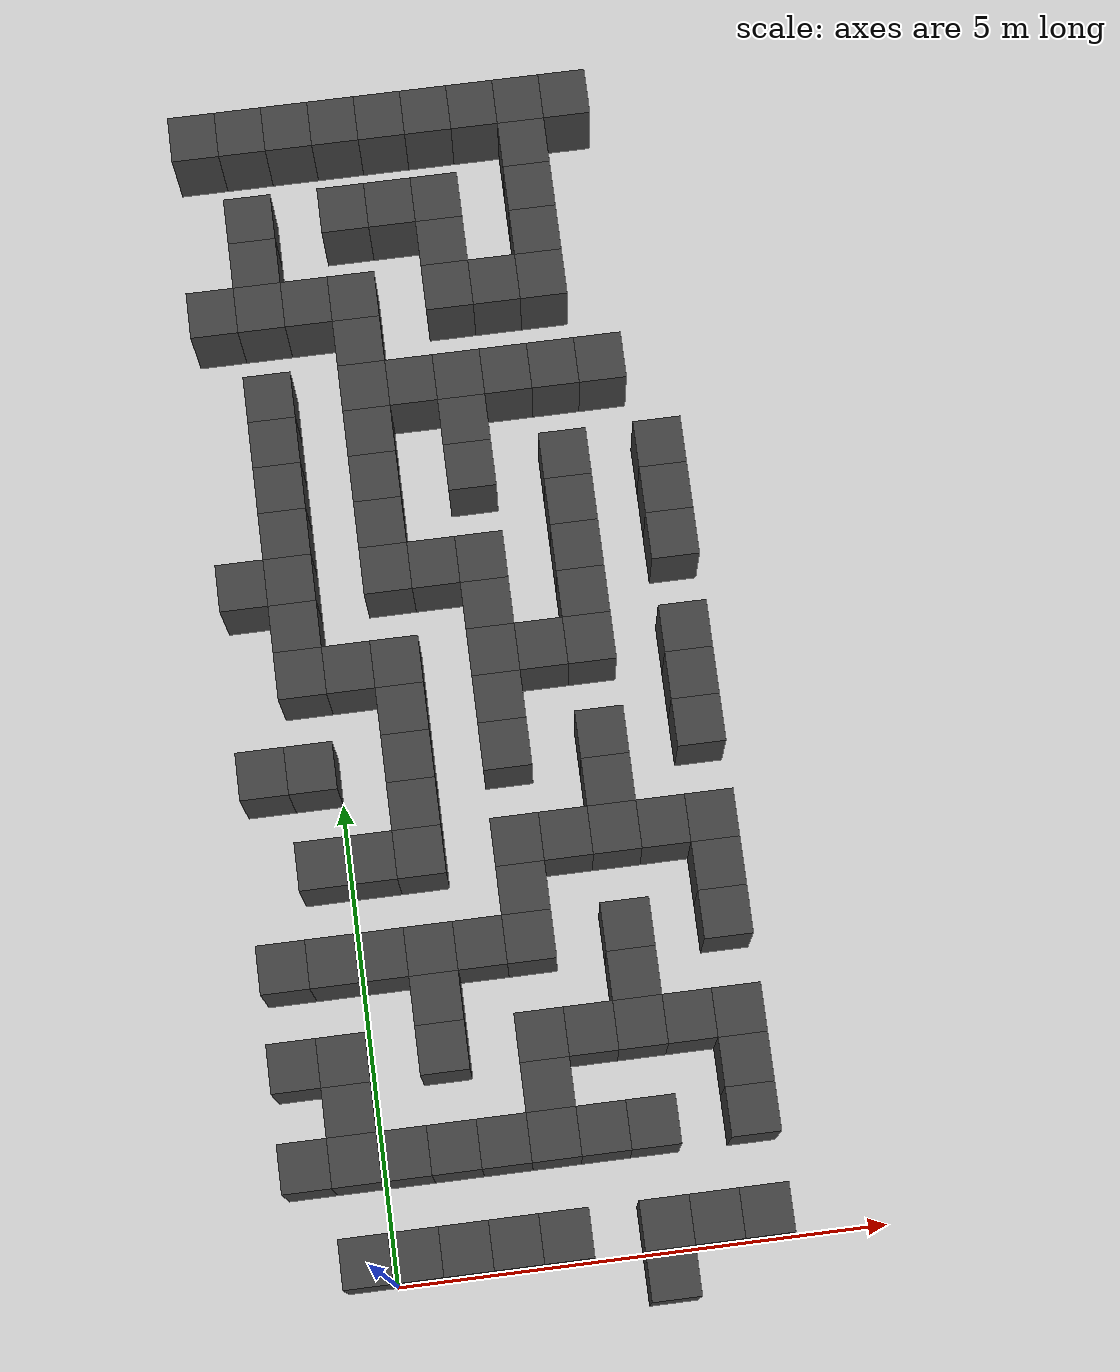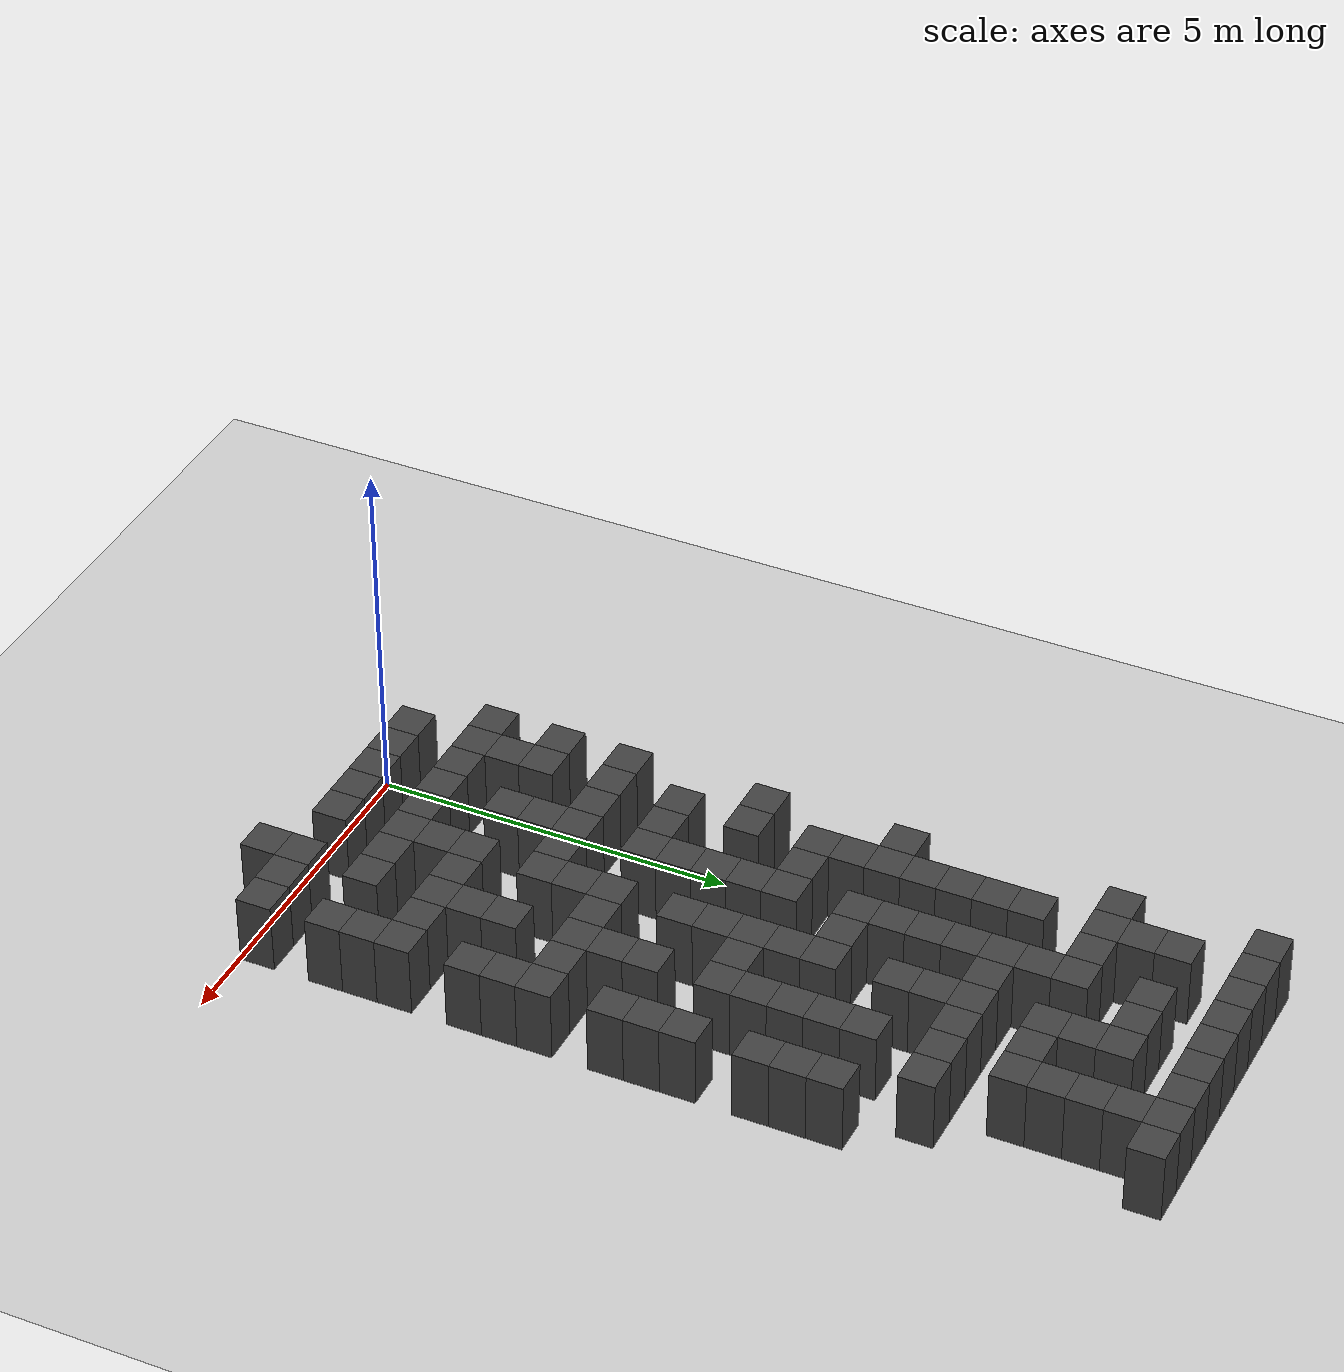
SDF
<sdf version="1.7">
 <world name="map_19815">
  <model name="ground_plane">
   <static>true</static>
   <link name="link">
    <collision name="collision">
     <geometry><plane><normal>0 0 1</normal><size>200 200</size></plane></geometry>
    </collision>
    <visual name="visual">
     <geometry><plane><normal>0 0 1</normal><size>200 200</size></plane></geometry>
     <material><ambient>0.8 0.8 0.8 1</ambient><diffuse>0.8 0.8 0.8 1</diffuse></material>
    </visual>
   </link>
  </model>
  <model name="maze_environment">
   <static>true</static>
   <link name="wall_23">
    <pose>-0.750 12.250 0.500 0 0 0</pose>
    <collision name="col"><geometry><box><size>0.5 0.5 1.0</size></box></geometry></collision>
    <visual name="vis">
     <geometry><box><size>0.5 0.5 1.0</size></box></geometry>
     <material><ambient>0.15 0.15 0.15 1</ambient><diffuse>0.25 0.25 0.25 1</diffuse></material>
    </visual>
   </link>
   <link name="wall_24">
    <pose>-0.250 12.250 0.500 0 0 0</pose>
    <collision name="col"><geometry><box><size>0.5 0.5 1.0</size></box></geometry></collision>
    <visual name="vis">
     <geometry><box><size>0.5 0.5 1.0</size></box></geometry>
     <material><ambient>0.15 0.15 0.15 1</ambient><diffuse>0.25 0.25 0.25 1</diffuse></material>
    </visual>
   </link>
   <link name="wall_25">
    <pose>0.250 12.250 0.500 0 0 0</pose>
    <collision name="col"><geometry><box><size>0.5 0.5 1.0</size></box></geometry></collision>
    <visual name="vis">
     <geometry><box><size>0.5 0.5 1.0</size></box></geometry>
     <material><ambient>0.15 0.15 0.15 1</ambient><diffuse>0.25 0.25 0.25 1</diffuse></material>
    </visual>
   </link>
   <link name="wall_26">
    <pose>0.750 12.250 0.500 0 0 0</pose>
    <collision name="col"><geometry><box><size>0.5 0.5 1.0</size></box></geometry></collision>
    <visual name="vis">
     <geometry><box><size>0.5 0.5 1.0</size></box></geometry>
     <material><ambient>0.15 0.15 0.15 1</ambient><diffuse>0.25 0.25 0.25 1</diffuse></material>
    </visual>
   </link>
   <link name="wall_27">
    <pose>1.250 12.250 0.500 0 0 0</pose>
    <collision name="col"><geometry><box><size>0.5 0.5 1.0</size></box></geometry></collision>
    <visual name="vis">
     <geometry><box><size>0.5 0.5 1.0</size></box></geometry>
     <material><ambient>0.15 0.15 0.15 1</ambient><diffuse>0.25 0.25 0.25 1</diffuse></material>
    </visual>
   </link>
   <link name="wall_28">
    <pose>1.750 12.250 0.500 0 0 0</pose>
    <collision name="col"><geometry><box><size>0.5 0.5 1.0</size></box></geometry></collision>
    <visual name="vis">
     <geometry><box><size>0.5 0.5 1.0</size></box></geometry>
     <material><ambient>0.15 0.15 0.15 1</ambient><diffuse>0.25 0.25 0.25 1</diffuse></material>
    </visual>
   </link>
   <link name="wall_29">
    <pose>2.250 12.250 0.500 0 0 0</pose>
    <collision name="col"><geometry><box><size>0.5 0.5 1.0</size></box></geometry></collision>
    <visual name="vis">
     <geometry><box><size>0.5 0.5 1.0</size></box></geometry>
     <material><ambient>0.15 0.15 0.15 1</ambient><diffuse>0.25 0.25 0.25 1</diffuse></material>
    </visual>
   </link>
   <link name="wall_30">
    <pose>2.750 12.250 0.500 0 0 0</pose>
    <collision name="col"><geometry><box><size>0.5 0.5 1.0</size></box></geometry></collision>
    <visual name="vis">
     <geometry><box><size>0.5 0.5 1.0</size></box></geometry>
     <material><ambient>0.15 0.15 0.15 1</ambient><diffuse>0.25 0.25 0.25 1</diffuse></material>
    </visual>
   </link>
   <link name="wall_31">
    <pose>3.250 12.250 0.500 0 0 0</pose>
    <collision name="col"><geometry><box><size>0.5 0.5 1.0</size></box></geometry></collision>
    <visual name="vis">
     <geometry><box><size>0.5 0.5 1.0</size></box></geometry>
     <material><ambient>0.15 0.15 0.15 1</ambient><diffuse>0.25 0.25 0.25 1</diffuse></material>
    </visual>
   </link>
   <link name="wall_56">
    <pose>2.750 11.750 0.500 0 0 0</pose>
    <collision name="col"><geometry><box><size>0.5 0.5 1.0</size></box></geometry></collision>
    <visual name="vis">
     <geometry><box><size>0.5 0.5 1.0</size></box></geometry>
     <material><ambient>0.15 0.15 0.15 1</ambient><diffuse>0.25 0.25 0.25 1</diffuse></material>
    </visual>
   </link>
   <link name="wall_74">
    <pose>-0.250 11.250 0.500 0 0 0</pose>
    <collision name="col"><geometry><box><size>0.5 0.5 1.0</size></box></geometry></collision>
    <visual name="vis">
     <geometry><box><size>0.5 0.5 1.0</size></box></geometry>
     <material><ambient>0.15 0.15 0.15 1</ambient><diffuse>0.25 0.25 0.25 1</diffuse></material>
    </visual>
   </link>
   <link name="wall_75">
    <pose>0.750 11.250 0.500 0 0 0</pose>
    <collision name="col"><geometry><box><size>0.5 0.5 1.0</size></box></geometry></collision>
    <visual name="vis">
     <geometry><box><size>0.5 0.5 1.0</size></box></geometry>
     <material><ambient>0.15 0.15 0.15 1</ambient><diffuse>0.25 0.25 0.25 1</diffuse></material>
    </visual>
   </link>
   <link name="wall_76">
    <pose>1.250 11.250 0.500 0 0 0</pose>
    <collision name="col"><geometry><box><size>0.5 0.5 1.0</size></box></geometry></collision>
    <visual name="vis">
     <geometry><box><size>0.5 0.5 1.0</size></box></geometry>
     <material><ambient>0.15 0.15 0.15 1</ambient><diffuse>0.25 0.25 0.25 1</diffuse></material>
    </visual>
   </link>
   <link name="wall_77">
    <pose>1.750 11.250 0.500 0 0 0</pose>
    <collision name="col"><geometry><box><size>0.5 0.5 1.0</size></box></geometry></collision>
    <visual name="vis">
     <geometry><box><size>0.5 0.5 1.0</size></box></geometry>
     <material><ambient>0.15 0.15 0.15 1</ambient><diffuse>0.25 0.25 0.25 1</diffuse></material>
    </visual>
   </link>
   <link name="wall_78">
    <pose>2.750 11.250 0.500 0 0 0</pose>
    <collision name="col"><geometry><box><size>0.5 0.5 1.0</size></box></geometry></collision>
    <visual name="vis">
     <geometry><box><size>0.5 0.5 1.0</size></box></geometry>
     <material><ambient>0.15 0.15 0.15 1</ambient><diffuse>0.25 0.25 0.25 1</diffuse></material>
    </visual>
   </link>
   <link name="wall_102">
    <pose>-0.250 10.750 0.500 0 0 0</pose>
    <collision name="col"><geometry><box><size>0.5 0.5 1.0</size></box></geometry></collision>
    <visual name="vis">
     <geometry><box><size>0.5 0.5 1.0</size></box></geometry>
     <material><ambient>0.15 0.15 0.15 1</ambient><diffuse>0.25 0.25 0.25 1</diffuse></material>
    </visual>
   </link>
   <link name="wall_103">
    <pose>1.750 10.750 0.500 0 0 0</pose>
    <collision name="col"><geometry><box><size>0.5 0.5 1.0</size></box></geometry></collision>
    <visual name="vis">
     <geometry><box><size>0.5 0.5 1.0</size></box></geometry>
     <material><ambient>0.15 0.15 0.15 1</ambient><diffuse>0.25 0.25 0.25 1</diffuse></material>
    </visual>
   </link>
   <link name="wall_104">
    <pose>2.750 10.750 0.500 0 0 0</pose>
    <collision name="col"><geometry><box><size>0.5 0.5 1.0</size></box></geometry></collision>
    <visual name="vis">
     <geometry><box><size>0.5 0.5 1.0</size></box></geometry>
     <material><ambient>0.15 0.15 0.15 1</ambient><diffuse>0.25 0.25 0.25 1</diffuse></material>
    </visual>
   </link>
   <link name="wall_126">
    <pose>-0.750 10.250 0.500 0 0 0</pose>
    <collision name="col"><geometry><box><size>0.5 0.5 1.0</size></box></geometry></collision>
    <visual name="vis">
     <geometry><box><size>0.5 0.5 1.0</size></box></geometry>
     <material><ambient>0.15 0.15 0.15 1</ambient><diffuse>0.25 0.25 0.25 1</diffuse></material>
    </visual>
   </link>
   <link name="wall_127">
    <pose>-0.250 10.250 0.500 0 0 0</pose>
    <collision name="col"><geometry><box><size>0.5 0.5 1.0</size></box></geometry></collision>
    <visual name="vis">
     <geometry><box><size>0.5 0.5 1.0</size></box></geometry>
     <material><ambient>0.15 0.15 0.15 1</ambient><diffuse>0.25 0.25 0.25 1</diffuse></material>
    </visual>
   </link>
   <link name="wall_128">
    <pose>0.250 10.250 0.500 0 0 0</pose>
    <collision name="col"><geometry><box><size>0.5 0.5 1.0</size></box></geometry></collision>
    <visual name="vis">
     <geometry><box><size>0.5 0.5 1.0</size></box></geometry>
     <material><ambient>0.15 0.15 0.15 1</ambient><diffuse>0.25 0.25 0.25 1</diffuse></material>
    </visual>
   </link>
   <link name="wall_129">
    <pose>0.750 10.250 0.500 0 0 0</pose>
    <collision name="col"><geometry><box><size>0.5 0.5 1.0</size></box></geometry></collision>
    <visual name="vis">
     <geometry><box><size>0.5 0.5 1.0</size></box></geometry>
     <material><ambient>0.15 0.15 0.15 1</ambient><diffuse>0.25 0.25 0.25 1</diffuse></material>
    </visual>
   </link>
   <link name="wall_130">
    <pose>1.750 10.250 0.500 0 0 0</pose>
    <collision name="col"><geometry><box><size>0.5 0.5 1.0</size></box></geometry></collision>
    <visual name="vis">
     <geometry><box><size>0.5 0.5 1.0</size></box></geometry>
     <material><ambient>0.15 0.15 0.15 1</ambient><diffuse>0.25 0.25 0.25 1</diffuse></material>
    </visual>
   </link>
   <link name="wall_131">
    <pose>2.250 10.250 0.500 0 0 0</pose>
    <collision name="col"><geometry><box><size>0.5 0.5 1.0</size></box></geometry></collision>
    <visual name="vis">
     <geometry><box><size>0.5 0.5 1.0</size></box></geometry>
     <material><ambient>0.15 0.15 0.15 1</ambient><diffuse>0.25 0.25 0.25 1</diffuse></material>
    </visual>
   </link>
   <link name="wall_132">
    <pose>2.750 10.250 0.500 0 0 0</pose>
    <collision name="col"><geometry><box><size>0.5 0.5 1.0</size></box></geometry></collision>
    <visual name="vis">
     <geometry><box><size>0.5 0.5 1.0</size></box></geometry>
     <material><ambient>0.15 0.15 0.15 1</ambient><diffuse>0.25 0.25 0.25 1</diffuse></material>
    </visual>
   </link>
   <link name="wall_153">
    <pose>0.750 9.750 0.500 0 0 0</pose>
    <collision name="col"><geometry><box><size>0.5 0.5 1.0</size></box></geometry></collision>
    <visual name="vis">
     <geometry><box><size>0.5 0.5 1.0</size></box></geometry>
     <material><ambient>0.15 0.15 0.15 1</ambient><diffuse>0.25 0.25 0.25 1</diffuse></material>
    </visual>
   </link>
   <link name="wall_180">
    <pose>-0.250 9.250 0.500 0 0 0</pose>
    <collision name="col"><geometry><box><size>0.5 0.5 1.0</size></box></geometry></collision>
    <visual name="vis">
     <geometry><box><size>0.5 0.5 1.0</size></box></geometry>
     <material><ambient>0.15 0.15 0.15 1</ambient><diffuse>0.25 0.25 0.25 1</diffuse></material>
    </visual>
   </link>
   <link name="wall_181">
    <pose>0.750 9.250 0.500 0 0 0</pose>
    <collision name="col"><geometry><box><size>0.5 0.5 1.0</size></box></geometry></collision>
    <visual name="vis">
     <geometry><box><size>0.5 0.5 1.0</size></box></geometry>
     <material><ambient>0.15 0.15 0.15 1</ambient><diffuse>0.25 0.25 0.25 1</diffuse></material>
    </visual>
   </link>
   <link name="wall_182">
    <pose>1.250 9.250 0.500 0 0 0</pose>
    <collision name="col"><geometry><box><size>0.5 0.5 1.0</size></box></geometry></collision>
    <visual name="vis">
     <geometry><box><size>0.5 0.5 1.0</size></box></geometry>
     <material><ambient>0.15 0.15 0.15 1</ambient><diffuse>0.25 0.25 0.25 1</diffuse></material>
    </visual>
   </link>
   <link name="wall_183">
    <pose>1.750 9.250 0.500 0 0 0</pose>
    <collision name="col"><geometry><box><size>0.5 0.5 1.0</size></box></geometry></collision>
    <visual name="vis">
     <geometry><box><size>0.5 0.5 1.0</size></box></geometry>
     <material><ambient>0.15 0.15 0.15 1</ambient><diffuse>0.25 0.25 0.25 1</diffuse></material>
    </visual>
   </link>
   <link name="wall_184">
    <pose>2.250 9.250 0.500 0 0 0</pose>
    <collision name="col"><geometry><box><size>0.5 0.5 1.0</size></box></geometry></collision>
    <visual name="vis">
     <geometry><box><size>0.5 0.5 1.0</size></box></geometry>
     <material><ambient>0.15 0.15 0.15 1</ambient><diffuse>0.25 0.25 0.25 1</diffuse></material>
    </visual>
   </link>
   <link name="wall_185">
    <pose>2.750 9.250 0.500 0 0 0</pose>
    <collision name="col"><geometry><box><size>0.5 0.5 1.0</size></box></geometry></collision>
    <visual name="vis">
     <geometry><box><size>0.5 0.5 1.0</size></box></geometry>
     <material><ambient>0.15 0.15 0.15 1</ambient><diffuse>0.25 0.25 0.25 1</diffuse></material>
    </visual>
   </link>
   <link name="wall_186">
    <pose>3.250 9.250 0.500 0 0 0</pose>
    <collision name="col"><geometry><box><size>0.5 0.5 1.0</size></box></geometry></collision>
    <visual name="vis">
     <geometry><box><size>0.5 0.5 1.0</size></box></geometry>
     <material><ambient>0.15 0.15 0.15 1</ambient><diffuse>0.25 0.25 0.25 1</diffuse></material>
    </visual>
   </link>
   <link name="wall_207">
    <pose>-0.250 8.750 0.500 0 0 0</pose>
    <collision name="col"><geometry><box><size>0.5 0.5 1.0</size></box></geometry></collision>
    <visual name="vis">
     <geometry><box><size>0.5 0.5 1.0</size></box></geometry>
     <material><ambient>0.15 0.15 0.15 1</ambient><diffuse>0.25 0.25 0.25 1</diffuse></material>
    </visual>
   </link>
   <link name="wall_208">
    <pose>0.750 8.750 0.500 0 0 0</pose>
    <collision name="col"><geometry><box><size>0.5 0.5 1.0</size></box></geometry></collision>
    <visual name="vis">
     <geometry><box><size>0.5 0.5 1.0</size></box></geometry>
     <material><ambient>0.15 0.15 0.15 1</ambient><diffuse>0.25 0.25 0.25 1</diffuse></material>
    </visual>
   </link>
   <link name="wall_209">
    <pose>1.750 8.750 0.500 0 0 0</pose>
    <collision name="col"><geometry><box><size>0.5 0.5 1.0</size></box></geometry></collision>
    <visual name="vis">
     <geometry><box><size>0.5 0.5 1.0</size></box></geometry>
     <material><ambient>0.15 0.15 0.15 1</ambient><diffuse>0.25 0.25 0.25 1</diffuse></material>
    </visual>
   </link>
   <link name="wall_233">
    <pose>-0.250 8.250 0.500 0 0 0</pose>
    <collision name="col"><geometry><box><size>0.5 0.5 1.0</size></box></geometry></collision>
    <visual name="vis">
     <geometry><box><size>0.5 0.5 1.0</size></box></geometry>
     <material><ambient>0.15 0.15 0.15 1</ambient><diffuse>0.25 0.25 0.25 1</diffuse></material>
    </visual>
   </link>
   <link name="wall_234">
    <pose>0.750 8.250 0.500 0 0 0</pose>
    <collision name="col"><geometry><box><size>0.5 0.5 1.0</size></box></geometry></collision>
    <visual name="vis">
     <geometry><box><size>0.5 0.5 1.0</size></box></geometry>
     <material><ambient>0.15 0.15 0.15 1</ambient><diffuse>0.25 0.25 0.25 1</diffuse></material>
    </visual>
   </link>
   <link name="wall_235">
    <pose>1.750 8.250 0.500 0 0 0</pose>
    <collision name="col"><geometry><box><size>0.5 0.5 1.0</size></box></geometry></collision>
    <visual name="vis">
     <geometry><box><size>0.5 0.5 1.0</size></box></geometry>
     <material><ambient>0.15 0.15 0.15 1</ambient><diffuse>0.25 0.25 0.25 1</diffuse></material>
    </visual>
   </link>
   <link name="wall_236">
    <pose>2.750 8.250 0.500 0 0 0</pose>
    <collision name="col"><geometry><box><size>0.5 0.5 1.0</size></box></geometry></collision>
    <visual name="vis">
     <geometry><box><size>0.5 0.5 1.0</size></box></geometry>
     <material><ambient>0.15 0.15 0.15 1</ambient><diffuse>0.25 0.25 0.25 1</diffuse></material>
    </visual>
   </link>
   <link name="wall_237">
    <pose>3.750 8.250 0.500 0 0 0</pose>
    <collision name="col"><geometry><box><size>0.5 0.5 1.0</size></box></geometry></collision>
    <visual name="vis">
     <geometry><box><size>0.5 0.5 1.0</size></box></geometry>
     <material><ambient>0.15 0.15 0.15 1</ambient><diffuse>0.25 0.25 0.25 1</diffuse></material>
    </visual>
   </link>
   <link name="wall_259">
    <pose>-0.250 7.750 0.500 0 0 0</pose>
    <collision name="col"><geometry><box><size>0.5 0.5 1.0</size></box></geometry></collision>
    <visual name="vis">
     <geometry><box><size>0.5 0.5 1.0</size></box></geometry>
     <material><ambient>0.15 0.15 0.15 1</ambient><diffuse>0.25 0.25 0.25 1</diffuse></material>
    </visual>
   </link>
   <link name="wall_260">
    <pose>0.750 7.750 0.500 0 0 0</pose>
    <collision name="col"><geometry><box><size>0.5 0.5 1.0</size></box></geometry></collision>
    <visual name="vis">
     <geometry><box><size>0.5 0.5 1.0</size></box></geometry>
     <material><ambient>0.15 0.15 0.15 1</ambient><diffuse>0.25 0.25 0.25 1</diffuse></material>
    </visual>
   </link>
   <link name="wall_261">
    <pose>2.750 7.750 0.500 0 0 0</pose>
    <collision name="col"><geometry><box><size>0.5 0.5 1.0</size></box></geometry></collision>
    <visual name="vis">
     <geometry><box><size>0.5 0.5 1.0</size></box></geometry>
     <material><ambient>0.15 0.15 0.15 1</ambient><diffuse>0.25 0.25 0.25 1</diffuse></material>
    </visual>
   </link>
   <link name="wall_262">
    <pose>3.750 7.750 0.500 0 0 0</pose>
    <collision name="col"><geometry><box><size>0.5 0.5 1.0</size></box></geometry></collision>
    <visual name="vis">
     <geometry><box><size>0.5 0.5 1.0</size></box></geometry>
     <material><ambient>0.15 0.15 0.15 1</ambient><diffuse>0.25 0.25 0.25 1</diffuse></material>
    </visual>
   </link>
   <link name="wall_281">
    <pose>-0.750 7.250 0.500 0 0 0</pose>
    <collision name="col"><geometry><box><size>0.5 0.5 1.0</size></box></geometry></collision>
    <visual name="vis">
     <geometry><box><size>0.5 0.5 1.0</size></box></geometry>
     <material><ambient>0.15 0.15 0.15 1</ambient><diffuse>0.25 0.25 0.25 1</diffuse></material>
    </visual>
   </link>
   <link name="wall_282">
    <pose>-0.250 7.250 0.500 0 0 0</pose>
    <collision name="col"><geometry><box><size>0.5 0.5 1.0</size></box></geometry></collision>
    <visual name="vis">
     <geometry><box><size>0.5 0.5 1.0</size></box></geometry>
     <material><ambient>0.15 0.15 0.15 1</ambient><diffuse>0.25 0.25 0.25 1</diffuse></material>
    </visual>
   </link>
   <link name="wall_283">
    <pose>0.750 7.250 0.500 0 0 0</pose>
    <collision name="col"><geometry><box><size>0.5 0.5 1.0</size></box></geometry></collision>
    <visual name="vis">
     <geometry><box><size>0.5 0.5 1.0</size></box></geometry>
     <material><ambient>0.15 0.15 0.15 1</ambient><diffuse>0.25 0.25 0.25 1</diffuse></material>
    </visual>
   </link>
   <link name="wall_284">
    <pose>1.250 7.250 0.500 0 0 0</pose>
    <collision name="col"><geometry><box><size>0.5 0.5 1.0</size></box></geometry></collision>
    <visual name="vis">
     <geometry><box><size>0.5 0.5 1.0</size></box></geometry>
     <material><ambient>0.15 0.15 0.15 1</ambient><diffuse>0.25 0.25 0.25 1</diffuse></material>
    </visual>
   </link>
   <link name="wall_285">
    <pose>1.750 7.250 0.500 0 0 0</pose>
    <collision name="col"><geometry><box><size>0.5 0.5 1.0</size></box></geometry></collision>
    <visual name="vis">
     <geometry><box><size>0.5 0.5 1.0</size></box></geometry>
     <material><ambient>0.15 0.15 0.15 1</ambient><diffuse>0.25 0.25 0.25 1</diffuse></material>
    </visual>
   </link>
   <link name="wall_286">
    <pose>2.750 7.250 0.500 0 0 0</pose>
    <collision name="col"><geometry><box><size>0.5 0.5 1.0</size></box></geometry></collision>
    <visual name="vis">
     <geometry><box><size>0.5 0.5 1.0</size></box></geometry>
     <material><ambient>0.15 0.15 0.15 1</ambient><diffuse>0.25 0.25 0.25 1</diffuse></material>
    </visual>
   </link>
   <link name="wall_287">
    <pose>3.750 7.250 0.500 0 0 0</pose>
    <collision name="col"><geometry><box><size>0.5 0.5 1.0</size></box></geometry></collision>
    <visual name="vis">
     <geometry><box><size>0.5 0.5 1.0</size></box></geometry>
     <material><ambient>0.15 0.15 0.15 1</ambient><diffuse>0.25 0.25 0.25 1</diffuse></material>
    </visual>
   </link>
   <link name="wall_309">
    <pose>-0.250 6.750 0.500 0 0 0</pose>
    <collision name="col"><geometry><box><size>0.5 0.5 1.0</size></box></geometry></collision>
    <visual name="vis">
     <geometry><box><size>0.5 0.5 1.0</size></box></geometry>
     <material><ambient>0.15 0.15 0.15 1</ambient><diffuse>0.25 0.25 0.25 1</diffuse></material>
    </visual>
   </link>
   <link name="wall_310">
    <pose>1.750 6.750 0.500 0 0 0</pose>
    <collision name="col"><geometry><box><size>0.5 0.5 1.0</size></box></geometry></collision>
    <visual name="vis">
     <geometry><box><size>0.5 0.5 1.0</size></box></geometry>
     <material><ambient>0.15 0.15 0.15 1</ambient><diffuse>0.25 0.25 0.25 1</diffuse></material>
    </visual>
   </link>
   <link name="wall_311">
    <pose>2.750 6.750 0.500 0 0 0</pose>
    <collision name="col"><geometry><box><size>0.5 0.5 1.0</size></box></geometry></collision>
    <visual name="vis">
     <geometry><box><size>0.5 0.5 1.0</size></box></geometry>
     <material><ambient>0.15 0.15 0.15 1</ambient><diffuse>0.25 0.25 0.25 1</diffuse></material>
    </visual>
   </link>
   <link name="wall_336">
    <pose>-0.250 6.250 0.500 0 0 0</pose>
    <collision name="col"><geometry><box><size>0.5 0.5 1.0</size></box></geometry></collision>
    <visual name="vis">
     <geometry><box><size>0.5 0.5 1.0</size></box></geometry>
     <material><ambient>0.15 0.15 0.15 1</ambient><diffuse>0.25 0.25 0.25 1</diffuse></material>
    </visual>
   </link>
   <link name="wall_337">
    <pose>0.250 6.250 0.500 0 0 0</pose>
    <collision name="col"><geometry><box><size>0.5 0.5 1.0</size></box></geometry></collision>
    <visual name="vis">
     <geometry><box><size>0.5 0.5 1.0</size></box></geometry>
     <material><ambient>0.15 0.15 0.15 1</ambient><diffuse>0.25 0.25 0.25 1</diffuse></material>
    </visual>
   </link>
   <link name="wall_338">
    <pose>0.750 6.250 0.500 0 0 0</pose>
    <collision name="col"><geometry><box><size>0.5 0.5 1.0</size></box></geometry></collision>
    <visual name="vis">
     <geometry><box><size>0.5 0.5 1.0</size></box></geometry>
     <material><ambient>0.15 0.15 0.15 1</ambient><diffuse>0.25 0.25 0.25 1</diffuse></material>
    </visual>
   </link>
   <link name="wall_339">
    <pose>1.750 6.250 0.500 0 0 0</pose>
    <collision name="col"><geometry><box><size>0.5 0.5 1.0</size></box></geometry></collision>
    <visual name="vis">
     <geometry><box><size>0.5 0.5 1.0</size></box></geometry>
     <material><ambient>0.15 0.15 0.15 1</ambient><diffuse>0.25 0.25 0.25 1</diffuse></material>
    </visual>
   </link>
   <link name="wall_340">
    <pose>2.250 6.250 0.500 0 0 0</pose>
    <collision name="col"><geometry><box><size>0.5 0.5 1.0</size></box></geometry></collision>
    <visual name="vis">
     <geometry><box><size>0.5 0.5 1.0</size></box></geometry>
     <material><ambient>0.15 0.15 0.15 1</ambient><diffuse>0.25 0.25 0.25 1</diffuse></material>
    </visual>
   </link>
   <link name="wall_341">
    <pose>2.750 6.250 0.500 0 0 0</pose>
    <collision name="col"><geometry><box><size>0.5 0.5 1.0</size></box></geometry></collision>
    <visual name="vis">
     <geometry><box><size>0.5 0.5 1.0</size></box></geometry>
     <material><ambient>0.15 0.15 0.15 1</ambient><diffuse>0.25 0.25 0.25 1</diffuse></material>
    </visual>
   </link>
   <link name="wall_342">
    <pose>3.750 6.250 0.500 0 0 0</pose>
    <collision name="col"><geometry><box><size>0.5 0.5 1.0</size></box></geometry></collision>
    <visual name="vis">
     <geometry><box><size>0.5 0.5 1.0</size></box></geometry>
     <material><ambient>0.15 0.15 0.15 1</ambient><diffuse>0.25 0.25 0.25 1</diffuse></material>
    </visual>
   </link>
   <link name="wall_361">
    <pose>0.750 5.750 0.500 0 0 0</pose>
    <collision name="col"><geometry><box><size>0.5 0.5 1.0</size></box></geometry></collision>
    <visual name="vis">
     <geometry><box><size>0.5 0.5 1.0</size></box></geometry>
     <material><ambient>0.15 0.15 0.15 1</ambient><diffuse>0.25 0.25 0.25 1</diffuse></material>
    </visual>
   </link>
   <link name="wall_362">
    <pose>1.750 5.750 0.500 0 0 0</pose>
    <collision name="col"><geometry><box><size>0.5 0.5 1.0</size></box></geometry></collision>
    <visual name="vis">
     <geometry><box><size>0.5 0.5 1.0</size></box></geometry>
     <material><ambient>0.15 0.15 0.15 1</ambient><diffuse>0.25 0.25 0.25 1</diffuse></material>
    </visual>
   </link>
   <link name="wall_363">
    <pose>3.750 5.750 0.500 0 0 0</pose>
    <collision name="col"><geometry><box><size>0.5 0.5 1.0</size></box></geometry></collision>
    <visual name="vis">
     <geometry><box><size>0.5 0.5 1.0</size></box></geometry>
     <material><ambient>0.15 0.15 0.15 1</ambient><diffuse>0.25 0.25 0.25 1</diffuse></material>
    </visual>
   </link>
   <link name="wall_387">
    <pose>-0.750 5.250 0.500 0 0 0</pose>
    <collision name="col"><geometry><box><size>0.5 0.5 1.0</size></box></geometry></collision>
    <visual name="vis">
     <geometry><box><size>0.5 0.5 1.0</size></box></geometry>
     <material><ambient>0.15 0.15 0.15 1</ambient><diffuse>0.25 0.25 0.25 1</diffuse></material>
    </visual>
   </link>
   <link name="wall_388">
    <pose>-0.250 5.250 0.500 0 0 0</pose>
    <collision name="col"><geometry><box><size>0.5 0.5 1.0</size></box></geometry></collision>
    <visual name="vis">
     <geometry><box><size>0.5 0.5 1.0</size></box></geometry>
     <material><ambient>0.15 0.15 0.15 1</ambient><diffuse>0.25 0.25 0.25 1</diffuse></material>
    </visual>
   </link>
   <link name="wall_389">
    <pose>0.750 5.250 0.500 0 0 0</pose>
    <collision name="col"><geometry><box><size>0.5 0.5 1.0</size></box></geometry></collision>
    <visual name="vis">
     <geometry><box><size>0.5 0.5 1.0</size></box></geometry>
     <material><ambient>0.15 0.15 0.15 1</ambient><diffuse>0.25 0.25 0.25 1</diffuse></material>
    </visual>
   </link>
   <link name="wall_390">
    <pose>1.750 5.250 0.500 0 0 0</pose>
    <collision name="col"><geometry><box><size>0.5 0.5 1.0</size></box></geometry></collision>
    <visual name="vis">
     <geometry><box><size>0.5 0.5 1.0</size></box></geometry>
     <material><ambient>0.15 0.15 0.15 1</ambient><diffuse>0.25 0.25 0.25 1</diffuse></material>
    </visual>
   </link>
   <link name="wall_391">
    <pose>2.750 5.250 0.500 0 0 0</pose>
    <collision name="col"><geometry><box><size>0.5 0.5 1.0</size></box></geometry></collision>
    <visual name="vis">
     <geometry><box><size>0.5 0.5 1.0</size></box></geometry>
     <material><ambient>0.15 0.15 0.15 1</ambient><diffuse>0.25 0.25 0.25 1</diffuse></material>
    </visual>
   </link>
   <link name="wall_392">
    <pose>3.750 5.250 0.500 0 0 0</pose>
    <collision name="col"><geometry><box><size>0.5 0.5 1.0</size></box></geometry></collision>
    <visual name="vis">
     <geometry><box><size>0.5 0.5 1.0</size></box></geometry>
     <material><ambient>0.15 0.15 0.15 1</ambient><diffuse>0.25 0.25 0.25 1</diffuse></material>
    </visual>
   </link>
   <link name="wall_412">
    <pose>0.750 4.750 0.500 0 0 0</pose>
    <collision name="col"><geometry><box><size>0.5 0.5 1.0</size></box></geometry></collision>
    <visual name="vis">
     <geometry><box><size>0.5 0.5 1.0</size></box></geometry>
     <material><ambient>0.15 0.15 0.15 1</ambient><diffuse>0.25 0.25 0.25 1</diffuse></material>
    </visual>
   </link>
   <link name="wall_413">
    <pose>2.750 4.750 0.500 0 0 0</pose>
    <collision name="col"><geometry><box><size>0.5 0.5 1.0</size></box></geometry></collision>
    <visual name="vis">
     <geometry><box><size>0.5 0.5 1.0</size></box></geometry>
     <material><ambient>0.15 0.15 0.15 1</ambient><diffuse>0.25 0.25 0.25 1</diffuse></material>
    </visual>
   </link>
   <link name="wall_439">
    <pose>-0.250 4.250 0.500 0 0 0</pose>
    <collision name="col"><geometry><box><size>0.5 0.5 1.0</size></box></geometry></collision>
    <visual name="vis">
     <geometry><box><size>0.5 0.5 1.0</size></box></geometry>
     <material><ambient>0.15 0.15 0.15 1</ambient><diffuse>0.25 0.25 0.25 1</diffuse></material>
    </visual>
   </link>
   <link name="wall_440">
    <pose>0.250 4.250 0.500 0 0 0</pose>
    <collision name="col"><geometry><box><size>0.5 0.5 1.0</size></box></geometry></collision>
    <visual name="vis">
     <geometry><box><size>0.5 0.5 1.0</size></box></geometry>
     <material><ambient>0.15 0.15 0.15 1</ambient><diffuse>0.25 0.25 0.25 1</diffuse></material>
    </visual>
   </link>
   <link name="wall_441">
    <pose>0.750 4.250 0.500 0 0 0</pose>
    <collision name="col"><geometry><box><size>0.5 0.5 1.0</size></box></geometry></collision>
    <visual name="vis">
     <geometry><box><size>0.5 0.5 1.0</size></box></geometry>
     <material><ambient>0.15 0.15 0.15 1</ambient><diffuse>0.25 0.25 0.25 1</diffuse></material>
    </visual>
   </link>
   <link name="wall_442">
    <pose>1.750 4.250 0.500 0 0 0</pose>
    <collision name="col"><geometry><box><size>0.5 0.5 1.0</size></box></geometry></collision>
    <visual name="vis">
     <geometry><box><size>0.5 0.5 1.0</size></box></geometry>
     <material><ambient>0.15 0.15 0.15 1</ambient><diffuse>0.25 0.25 0.25 1</diffuse></material>
    </visual>
   </link>
   <link name="wall_443">
    <pose>2.250 4.250 0.500 0 0 0</pose>
    <collision name="col"><geometry><box><size>0.5 0.5 1.0</size></box></geometry></collision>
    <visual name="vis">
     <geometry><box><size>0.5 0.5 1.0</size></box></geometry>
     <material><ambient>0.15 0.15 0.15 1</ambient><diffuse>0.25 0.25 0.25 1</diffuse></material>
    </visual>
   </link>
   <link name="wall_444">
    <pose>2.750 4.250 0.500 0 0 0</pose>
    <collision name="col"><geometry><box><size>0.5 0.5 1.0</size></box></geometry></collision>
    <visual name="vis">
     <geometry><box><size>0.5 0.5 1.0</size></box></geometry>
     <material><ambient>0.15 0.15 0.15 1</ambient><diffuse>0.25 0.25 0.25 1</diffuse></material>
    </visual>
   </link>
   <link name="wall_445">
    <pose>3.250 4.250 0.500 0 0 0</pose>
    <collision name="col"><geometry><box><size>0.5 0.5 1.0</size></box></geometry></collision>
    <visual name="vis">
     <geometry><box><size>0.5 0.5 1.0</size></box></geometry>
     <material><ambient>0.15 0.15 0.15 1</ambient><diffuse>0.25 0.25 0.25 1</diffuse></material>
    </visual>
   </link>
   <link name="wall_446">
    <pose>3.750 4.250 0.500 0 0 0</pose>
    <collision name="col"><geometry><box><size>0.5 0.5 1.0</size></box></geometry></collision>
    <visual name="vis">
     <geometry><box><size>0.5 0.5 1.0</size></box></geometry>
     <material><ambient>0.15 0.15 0.15 1</ambient><diffuse>0.25 0.25 0.25 1</diffuse></material>
    </visual>
   </link>
   <link name="wall_464">
    <pose>1.750 3.750 0.500 0 0 0</pose>
    <collision name="col"><geometry><box><size>0.5 0.5 1.0</size></box></geometry></collision>
    <visual name="vis">
     <geometry><box><size>0.5 0.5 1.0</size></box></geometry>
     <material><ambient>0.15 0.15 0.15 1</ambient><diffuse>0.25 0.25 0.25 1</diffuse></material>
    </visual>
   </link>
   <link name="wall_465">
    <pose>3.750 3.750 0.500 0 0 0</pose>
    <collision name="col"><geometry><box><size>0.5 0.5 1.0</size></box></geometry></collision>
    <visual name="vis">
     <geometry><box><size>0.5 0.5 1.0</size></box></geometry>
     <material><ambient>0.15 0.15 0.15 1</ambient><diffuse>0.25 0.25 0.25 1</diffuse></material>
    </visual>
   </link>
   <link name="wall_486">
    <pose>-0.750 3.250 0.500 0 0 0</pose>
    <collision name="col"><geometry><box><size>0.5 0.5 1.0</size></box></geometry></collision>
    <visual name="vis">
     <geometry><box><size>0.5 0.5 1.0</size></box></geometry>
     <material><ambient>0.15 0.15 0.15 1</ambient><diffuse>0.25 0.25 0.25 1</diffuse></material>
    </visual>
   </link>
   <link name="wall_487">
    <pose>-0.250 3.250 0.500 0 0 0</pose>
    <collision name="col"><geometry><box><size>0.5 0.5 1.0</size></box></geometry></collision>
    <visual name="vis">
     <geometry><box><size>0.5 0.5 1.0</size></box></geometry>
     <material><ambient>0.15 0.15 0.15 1</ambient><diffuse>0.25 0.25 0.25 1</diffuse></material>
    </visual>
   </link>
   <link name="wall_488">
    <pose>0.250 3.250 0.500 0 0 0</pose>
    <collision name="col"><geometry><box><size>0.5 0.5 1.0</size></box></geometry></collision>
    <visual name="vis">
     <geometry><box><size>0.5 0.5 1.0</size></box></geometry>
     <material><ambient>0.15 0.15 0.15 1</ambient><diffuse>0.25 0.25 0.25 1</diffuse></material>
    </visual>
   </link>
   <link name="wall_489">
    <pose>0.750 3.250 0.500 0 0 0</pose>
    <collision name="col"><geometry><box><size>0.5 0.5 1.0</size></box></geometry></collision>
    <visual name="vis">
     <geometry><box><size>0.5 0.5 1.0</size></box></geometry>
     <material><ambient>0.15 0.15 0.15 1</ambient><diffuse>0.25 0.25 0.25 1</diffuse></material>
    </visual>
   </link>
   <link name="wall_490">
    <pose>1.250 3.250 0.500 0 0 0</pose>
    <collision name="col"><geometry><box><size>0.5 0.5 1.0</size></box></geometry></collision>
    <visual name="vis">
     <geometry><box><size>0.5 0.5 1.0</size></box></geometry>
     <material><ambient>0.15 0.15 0.15 1</ambient><diffuse>0.25 0.25 0.25 1</diffuse></material>
    </visual>
   </link>
   <link name="wall_491">
    <pose>1.750 3.250 0.500 0 0 0</pose>
    <collision name="col"><geometry><box><size>0.5 0.5 1.0</size></box></geometry></collision>
    <visual name="vis">
     <geometry><box><size>0.5 0.5 1.0</size></box></geometry>
     <material><ambient>0.15 0.15 0.15 1</ambient><diffuse>0.25 0.25 0.25 1</diffuse></material>
    </visual>
   </link>
   <link name="wall_492">
    <pose>2.750 3.250 0.500 0 0 0</pose>
    <collision name="col"><geometry><box><size>0.5 0.5 1.0</size></box></geometry></collision>
    <visual name="vis">
     <geometry><box><size>0.5 0.5 1.0</size></box></geometry>
     <material><ambient>0.15 0.15 0.15 1</ambient><diffuse>0.25 0.25 0.25 1</diffuse></material>
    </visual>
   </link>
   <link name="wall_493">
    <pose>3.750 3.250 0.500 0 0 0</pose>
    <collision name="col"><geometry><box><size>0.5 0.5 1.0</size></box></geometry></collision>
    <visual name="vis">
     <geometry><box><size>0.5 0.5 1.0</size></box></geometry>
     <material><ambient>0.15 0.15 0.15 1</ambient><diffuse>0.25 0.25 0.25 1</diffuse></material>
    </visual>
   </link>
   <link name="wall_514">
    <pose>0.750 2.750 0.500 0 0 0</pose>
    <collision name="col"><geometry><box><size>0.5 0.5 1.0</size></box></geometry></collision>
    <visual name="vis">
     <geometry><box><size>0.5 0.5 1.0</size></box></geometry>
     <material><ambient>0.15 0.15 0.15 1</ambient><diffuse>0.25 0.25 0.25 1</diffuse></material>
    </visual>
   </link>
   <link name="wall_515">
    <pose>2.750 2.750 0.500 0 0 0</pose>
    <collision name="col"><geometry><box><size>0.5 0.5 1.0</size></box></geometry></collision>
    <visual name="vis">
     <geometry><box><size>0.5 0.5 1.0</size></box></geometry>
     <material><ambient>0.15 0.15 0.15 1</ambient><diffuse>0.25 0.25 0.25 1</diffuse></material>
    </visual>
   </link>
   <link name="wall_543">
    <pose>-0.750 2.250 0.500 0 0 0</pose>
    <collision name="col"><geometry><box><size>0.5 0.5 1.0</size></box></geometry></collision>
    <visual name="vis">
     <geometry><box><size>0.5 0.5 1.0</size></box></geometry>
     <material><ambient>0.15 0.15 0.15 1</ambient><diffuse>0.25 0.25 0.25 1</diffuse></material>
    </visual>
   </link>
   <link name="wall_544">
    <pose>-0.250 2.250 0.500 0 0 0</pose>
    <collision name="col"><geometry><box><size>0.5 0.5 1.0</size></box></geometry></collision>
    <visual name="vis">
     <geometry><box><size>0.5 0.5 1.0</size></box></geometry>
     <material><ambient>0.15 0.15 0.15 1</ambient><diffuse>0.25 0.25 0.25 1</diffuse></material>
    </visual>
   </link>
   <link name="wall_545">
    <pose>0.750 2.250 0.500 0 0 0</pose>
    <collision name="col"><geometry><box><size>0.5 0.5 1.0</size></box></geometry></collision>
    <visual name="vis">
     <geometry><box><size>0.5 0.5 1.0</size></box></geometry>
     <material><ambient>0.15 0.15 0.15 1</ambient><diffuse>0.25 0.25 0.25 1</diffuse></material>
    </visual>
   </link>
   <link name="wall_546">
    <pose>1.750 2.250 0.500 0 0 0</pose>
    <collision name="col"><geometry><box><size>0.5 0.5 1.0</size></box></geometry></collision>
    <visual name="vis">
     <geometry><box><size>0.5 0.5 1.0</size></box></geometry>
     <material><ambient>0.15 0.15 0.15 1</ambient><diffuse>0.25 0.25 0.25 1</diffuse></material>
    </visual>
   </link>
   <link name="wall_547">
    <pose>2.250 2.250 0.500 0 0 0</pose>
    <collision name="col"><geometry><box><size>0.5 0.5 1.0</size></box></geometry></collision>
    <visual name="vis">
     <geometry><box><size>0.5 0.5 1.0</size></box></geometry>
     <material><ambient>0.15 0.15 0.15 1</ambient><diffuse>0.25 0.25 0.25 1</diffuse></material>
    </visual>
   </link>
   <link name="wall_548">
    <pose>2.750 2.250 0.500 0 0 0</pose>
    <collision name="col"><geometry><box><size>0.5 0.5 1.0</size></box></geometry></collision>
    <visual name="vis">
     <geometry><box><size>0.5 0.5 1.0</size></box></geometry>
     <material><ambient>0.15 0.15 0.15 1</ambient><diffuse>0.25 0.25 0.25 1</diffuse></material>
    </visual>
   </link>
   <link name="wall_549">
    <pose>3.250 2.250 0.500 0 0 0</pose>
    <collision name="col"><geometry><box><size>0.5 0.5 1.0</size></box></geometry></collision>
    <visual name="vis">
     <geometry><box><size>0.5 0.5 1.0</size></box></geometry>
     <material><ambient>0.15 0.15 0.15 1</ambient><diffuse>0.25 0.25 0.25 1</diffuse></material>
    </visual>
   </link>
   <link name="wall_550">
    <pose>3.750 2.250 0.500 0 0 0</pose>
    <collision name="col"><geometry><box><size>0.5 0.5 1.0</size></box></geometry></collision>
    <visual name="vis">
     <geometry><box><size>0.5 0.5 1.0</size></box></geometry>
     <material><ambient>0.15 0.15 0.15 1</ambient><diffuse>0.25 0.25 0.25 1</diffuse></material>
    </visual>
   </link>
   <link name="wall_566">
    <pose>-0.250 1.750 0.500 0 0 0</pose>
    <collision name="col"><geometry><box><size>0.5 0.5 1.0</size></box></geometry></collision>
    <visual name="vis">
     <geometry><box><size>0.5 0.5 1.0</size></box></geometry>
     <material><ambient>0.15 0.15 0.15 1</ambient><diffuse>0.25 0.25 0.25 1</diffuse></material>
    </visual>
   </link>
   <link name="wall_567">
    <pose>1.750 1.750 0.500 0 0 0</pose>
    <collision name="col"><geometry><box><size>0.5 0.5 1.0</size></box></geometry></collision>
    <visual name="vis">
     <geometry><box><size>0.5 0.5 1.0</size></box></geometry>
     <material><ambient>0.15 0.15 0.15 1</ambient><diffuse>0.25 0.25 0.25 1</diffuse></material>
    </visual>
   </link>
   <link name="wall_568">
    <pose>3.750 1.750 0.500 0 0 0</pose>
    <collision name="col"><geometry><box><size>0.5 0.5 1.0</size></box></geometry></collision>
    <visual name="vis">
     <geometry><box><size>0.5 0.5 1.0</size></box></geometry>
     <material><ambient>0.15 0.15 0.15 1</ambient><diffuse>0.25 0.25 0.25 1</diffuse></material>
    </visual>
   </link>
   <link name="wall_592">
    <pose>-0.750 1.250 0.500 0 0 0</pose>
    <collision name="col"><geometry><box><size>0.5 0.5 1.0</size></box></geometry></collision>
    <visual name="vis">
     <geometry><box><size>0.5 0.5 1.0</size></box></geometry>
     <material><ambient>0.15 0.15 0.15 1</ambient><diffuse>0.25 0.25 0.25 1</diffuse></material>
    </visual>
   </link>
   <link name="wall_593">
    <pose>-0.250 1.250 0.500 0 0 0</pose>
    <collision name="col"><geometry><box><size>0.5 0.5 1.0</size></box></geometry></collision>
    <visual name="vis">
     <geometry><box><size>0.5 0.5 1.0</size></box></geometry>
     <material><ambient>0.15 0.15 0.15 1</ambient><diffuse>0.25 0.25 0.25 1</diffuse></material>
    </visual>
   </link>
   <link name="wall_594">
    <pose>0.250 1.250 0.500 0 0 0</pose>
    <collision name="col"><geometry><box><size>0.5 0.5 1.0</size></box></geometry></collision>
    <visual name="vis">
     <geometry><box><size>0.5 0.5 1.0</size></box></geometry>
     <material><ambient>0.15 0.15 0.15 1</ambient><diffuse>0.25 0.25 0.25 1</diffuse></material>
    </visual>
   </link>
   <link name="wall_595">
    <pose>0.750 1.250 0.500 0 0 0</pose>
    <collision name="col"><geometry><box><size>0.5 0.5 1.0</size></box></geometry></collision>
    <visual name="vis">
     <geometry><box><size>0.5 0.5 1.0</size></box></geometry>
     <material><ambient>0.15 0.15 0.15 1</ambient><diffuse>0.25 0.25 0.25 1</diffuse></material>
    </visual>
   </link>
   <link name="wall_596">
    <pose>1.250 1.250 0.500 0 0 0</pose>
    <collision name="col"><geometry><box><size>0.5 0.5 1.0</size></box></geometry></collision>
    <visual name="vis">
     <geometry><box><size>0.5 0.5 1.0</size></box></geometry>
     <material><ambient>0.15 0.15 0.15 1</ambient><diffuse>0.25 0.25 0.25 1</diffuse></material>
    </visual>
   </link>
   <link name="wall_597">
    <pose>1.750 1.250 0.500 0 0 0</pose>
    <collision name="col"><geometry><box><size>0.5 0.5 1.0</size></box></geometry></collision>
    <visual name="vis">
     <geometry><box><size>0.5 0.5 1.0</size></box></geometry>
     <material><ambient>0.15 0.15 0.15 1</ambient><diffuse>0.25 0.25 0.25 1</diffuse></material>
    </visual>
   </link>
   <link name="wall_598">
    <pose>2.250 1.250 0.500 0 0 0</pose>
    <collision name="col"><geometry><box><size>0.5 0.5 1.0</size></box></geometry></collision>
    <visual name="vis">
     <geometry><box><size>0.5 0.5 1.0</size></box></geometry>
     <material><ambient>0.15 0.15 0.15 1</ambient><diffuse>0.25 0.25 0.25 1</diffuse></material>
    </visual>
   </link>
   <link name="wall_599">
    <pose>2.750 1.250 0.500 0 0 0</pose>
    <collision name="col"><geometry><box><size>0.5 0.5 1.0</size></box></geometry></collision>
    <visual name="vis">
     <geometry><box><size>0.5 0.5 1.0</size></box></geometry>
     <material><ambient>0.15 0.15 0.15 1</ambient><diffuse>0.25 0.25 0.25 1</diffuse></material>
    </visual>
   </link>
   <link name="wall_600">
    <pose>3.750 1.250 0.500 0 0 0</pose>
    <collision name="col"><geometry><box><size>0.5 0.5 1.0</size></box></geometry></collision>
    <visual name="vis">
     <geometry><box><size>0.5 0.5 1.0</size></box></geometry>
     <material><ambient>0.15 0.15 0.15 1</ambient><diffuse>0.25 0.25 0.25 1</diffuse></material>
    </visual>
   </link>
   <link name="wall_642">
    <pose>-0.250 0.250 0.500 0 0 0</pose>
    <collision name="col"><geometry><box><size>0.5 0.5 1.0</size></box></geometry></collision>
    <visual name="vis">
     <geometry><box><size>0.5 0.5 1.0</size></box></geometry>
     <material><ambient>0.15 0.15 0.15 1</ambient><diffuse>0.25 0.25 0.25 1</diffuse></material>
    </visual>
   </link>
   <link name="wall_643">
    <pose>0.250 0.250 0.500 0 0 0</pose>
    <collision name="col"><geometry><box><size>0.5 0.5 1.0</size></box></geometry></collision>
    <visual name="vis">
     <geometry><box><size>0.5 0.5 1.0</size></box></geometry>
     <material><ambient>0.15 0.15 0.15 1</ambient><diffuse>0.25 0.25 0.25 1</diffuse></material>
    </visual>
   </link>
   <link name="wall_644">
    <pose>0.750 0.250 0.500 0 0 0</pose>
    <collision name="col"><geometry><box><size>0.5 0.5 1.0</size></box></geometry></collision>
    <visual name="vis">
     <geometry><box><size>0.5 0.5 1.0</size></box></geometry>
     <material><ambient>0.15 0.15 0.15 1</ambient><diffuse>0.25 0.25 0.25 1</diffuse></material>
    </visual>
   </link>
   <link name="wall_645">
    <pose>1.250 0.250 0.500 0 0 0</pose>
    <collision name="col"><geometry><box><size>0.5 0.5 1.0</size></box></geometry></collision>
    <visual name="vis">
     <geometry><box><size>0.5 0.5 1.0</size></box></geometry>
     <material><ambient>0.15 0.15 0.15 1</ambient><diffuse>0.25 0.25 0.25 1</diffuse></material>
    </visual>
   </link>
   <link name="wall_646">
    <pose>1.750 0.250 0.500 0 0 0</pose>
    <collision name="col"><geometry><box><size>0.5 0.5 1.0</size></box></geometry></collision>
    <visual name="vis">
     <geometry><box><size>0.5 0.5 1.0</size></box></geometry>
     <material><ambient>0.15 0.15 0.15 1</ambient><diffuse>0.25 0.25 0.25 1</diffuse></material>
    </visual>
   </link>
   <link name="wall_647">
    <pose>2.750 0.250 0.500 0 0 0</pose>
    <collision name="col"><geometry><box><size>0.5 0.5 1.0</size></box></geometry></collision>
    <visual name="vis">
     <geometry><box><size>0.5 0.5 1.0</size></box></geometry>
     <material><ambient>0.15 0.15 0.15 1</ambient><diffuse>0.25 0.25 0.25 1</diffuse></material>
    </visual>
   </link>
   <link name="wall_648">
    <pose>3.250 0.250 0.500 0 0 0</pose>
    <collision name="col"><geometry><box><size>0.5 0.5 1.0</size></box></geometry></collision>
    <visual name="vis">
     <geometry><box><size>0.5 0.5 1.0</size></box></geometry>
     <material><ambient>0.15 0.15 0.15 1</ambient><diffuse>0.25 0.25 0.25 1</diffuse></material>
    </visual>
   </link>
   <link name="wall_649">
    <pose>3.750 0.250 0.500 0 0 0</pose>
    <collision name="col"><geometry><box><size>0.5 0.5 1.0</size></box></geometry></collision>
    <visual name="vis">
     <geometry><box><size>0.5 0.5 1.0</size></box></geometry>
     <material><ambient>0.15 0.15 0.15 1</ambient><diffuse>0.25 0.25 0.25 1</diffuse></material>
    </visual>
   </link>
   <link name="wall_670">
    <pose>2.750 -0.250 0.500 0 0 0</pose>
    <collision name="col"><geometry><box><size>0.5 0.5 1.0</size></box></geometry></collision>
    <visual name="vis">
     <geometry><box><size>0.5 0.5 1.0</size></box></geometry>
     <material><ambient>0.15 0.15 0.15 1</ambient><diffuse>0.25 0.25 0.25 1</diffuse></material>
    </visual>
   </link>
  </model>
 </world>
</sdf>
